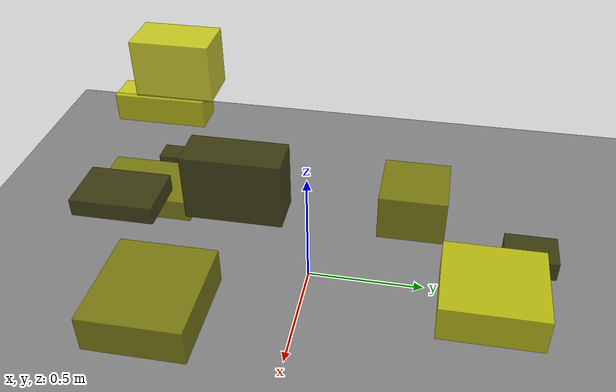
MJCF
<?xml version="1.0"?>
<mujoco model="obstacle_scene">
  <compiler angle="radian" coordinate="local"/>
  <option timestep="0.001" gravity="0 0 -9.81"/>

  <asset>
    <material name="obstacle_mat" rgba="0.8 0.8 0.0 0.8"/>
    <material name="ground_mat" rgba="0.5 0.5 0.5 1"/>
  </asset>

  <worldbody>
    <!-- Ground plane -->
    <geom name="ground" type="plane" size="3 3 0.1" material="ground_mat"/>

    <!-- Obstacles -->
    <body name="obstacle_0" pos="0.202670 -0.223771 0.617975">
      <geom name="obs_0" type="box" size="0.079793 0.185121 0.130881" rgba="0.2 0.2 0.0 0.8"/>
    </body>
    <body name="obstacle_1" pos="-0.361760 0.419257 0.182946">
      <geom name="obs_1" type="box" size="0.150648 0.149491 0.107160" rgba="0.5 0.5 0.0 0.8"/>
    </body>
    <body name="obstacle_2" pos="0.717280 0.697323 0.694642">
      <geom name="obs_2" type="box" size="0.146385 0.156172 0.059382" rgba="0.8 0.8 0.0 0.8"/>
    </body>
    <body name="obstacle_3" pos="0.182301 -0.705973 0.473920">
      <geom name="obs_3" type="box" size="0.112474 0.164319 0.035864" rgba="0.2 0.2 0.0 0.8"/>
    </body>
    <body name="obstacle_4" pos="0.647436 -0.418355 0.413561">
      <geom name="obs_4" type="box" size="0.201935 0.183924 0.070722" rgba="0.5 0.5 0.0 0.8"/>
    </body>
    <body name="obstacle_5" pos="-0.204694 -0.557029 0.870421">
      <geom name="obs_5" type="box" size="0.093342 0.155578 0.115715" rgba="0.8 0.8 0.0 0.8"/>
    </body>
    <body name="obstacle_6" pos="-0.034004 0.913783 0.214830">
      <geom name="obs_6" type="box" size="0.080105 0.106592 0.042054" rgba="0.2 0.2 0.0 0.8"/>
    </body>
    <body name="obstacle_7" pos="-0.040858 -0.677895 0.349711">
      <geom name="obs_7" type="box" size="0.134822 0.204741 0.044961" rgba="0.5 0.5 0.0 0.8"/>
    </body>
    <body name="obstacle_8" pos="-0.472165 -0.755119 0.507023">
      <geom name="obs_8" type="box" size="0.071109 0.203038 0.062143" rgba="0.8 0.8 0.0 0.8"/>
    </body>
    <body name="obstacle_9" pos="-0.625575 -0.741830 0.079855">
      <geom name="obs_9" type="box" size="0.052981 0.130293 0.053257" rgba="0.2 0.2 0.0 0.8"/>
    </body>
  </worldbody>
</mujoco>
